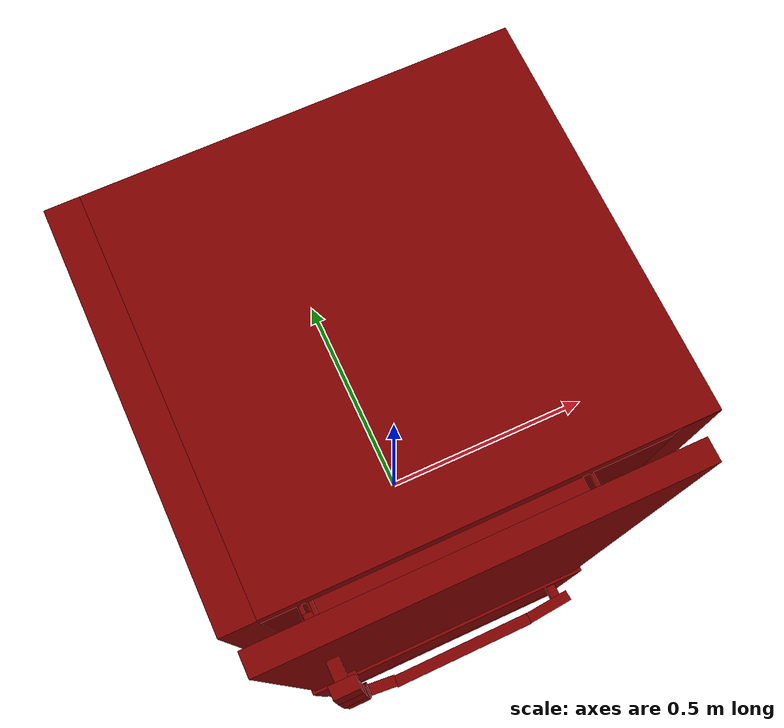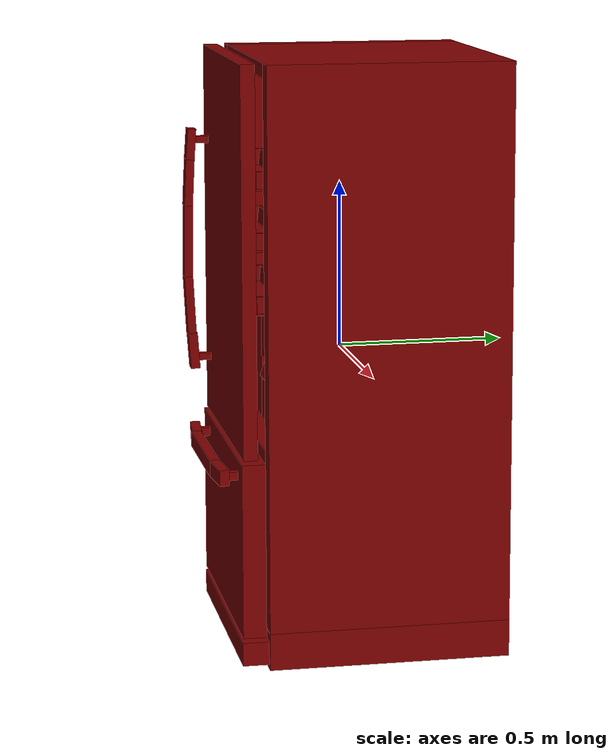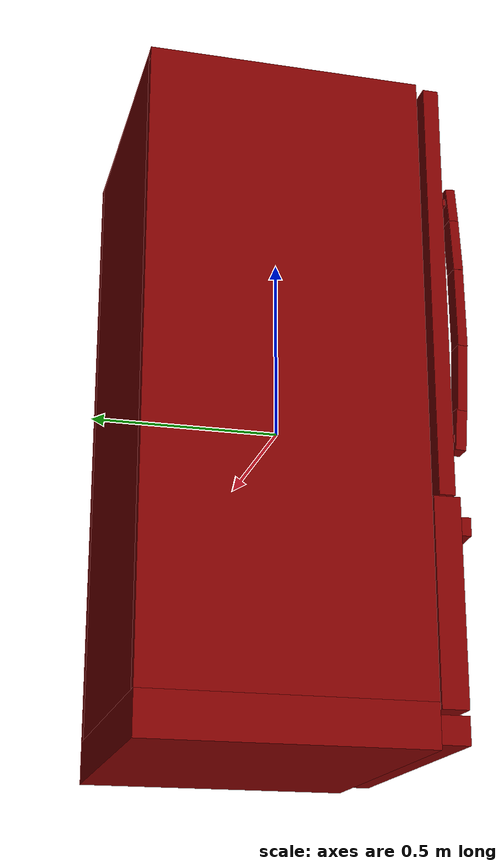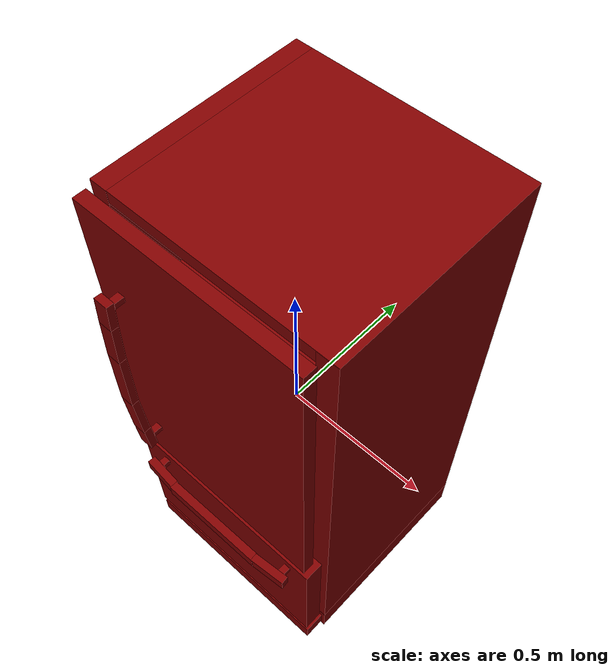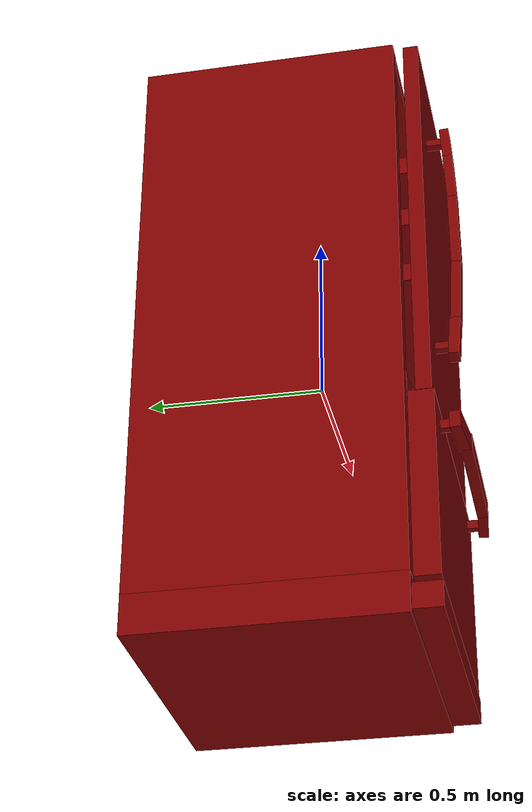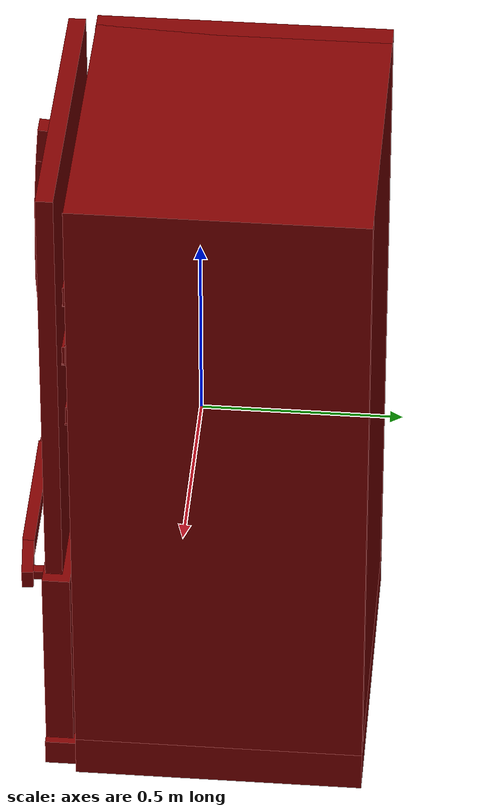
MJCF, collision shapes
<?xml version='1.0' encoding='UTF-8'?>
<mujoco model="model">
  <option timestep="0.002" gravity="0.0 0.0 -9.81"/>
  <compiler angle="radian"/>
  <asset>
    <mesh file="visuals/freezer0.obj" name="freezer0_vis"/>
    <mesh file="visuals/fridge_door.obj" name="fridge_door_vis"/>
    <mesh file="visuals/fridge_door_Clear.obj" name="fridge_door_Clear_vis"/>
    <mesh file="visuals/fridge_drawer0.obj" name="fridge_drawer0_vis"/>
    <mesh file="visuals/Body001.obj" name="Body001_vis"/>
    <mesh file="visuals/Body001_Clear.obj" name="Body001_Clear_vis"/>
    <texture file="visuals/T_BC001.png" name="Body001_material" type="2d"/>
    <material name="Body001_material" rgba="1 1 1 1.0" texture="Body001_material" shininess="0.4472135901451111" specular="2"/>
    <texture file="visuals/T_BC001.png" name="freezer0_material" type="2d"/>
    <material name="freezer0_material" rgba="1 1 1 1.0" texture="freezer0_material" shininess="0.4472135901451111" specular="2"/>
    <texture file="visuals/T_BC001.png" name="fridge_door_material" type="2d"/>
    <material name="fridge_door_material" rgba="1 1 1 1.0" texture="fridge_door_material" shininess="0.4472135901451111" specular="2"/>
    <texture file="visuals/T_BC001.png" name="fridge_door_Clear_material" type="2d"/>
    <material name="fridge_door_Clear_material" rgba="1 1 1 0.8030303120613098" texture="fridge_door_Clear_material" shininess="0.4472135901451111" specular="0.3103448502657381"/>
    <texture file="visuals/T_BC001.png" name="fridge_drawer0_material" type="2d"/>
    <material name="fridge_drawer0_material" rgba="1 1 1 1.0" texture="fridge_drawer0_material" shininess="0.4472135901451111" specular="0.3103448502657381"/>
    <texture file="visuals/T_BC001.png" name="Body001_Clear_material" type="2d"/>
    <material name="Body001_Clear_material" rgba="1 1 1 0.8030303120613098" texture="Body001_Clear_material" shininess="0.4472135901451111" specular="0.3103448502657381"/>
  </asset>
  <default>
    <default class="visual">
      <geom conaffinity="0" contype="0" group="1" type="mesh"/>
    </default>
    <default class="collision">
      <geom group="0" rgba="0.5 0 0 0.5"/>
    </default>
    <default class="spawn">
      <geom group="0" rgba="1 1 1 0.5" contype="0" conaffinity="0"/>
      <site group="0" rgba="1 1 1 0.5"/>
    </default>
    <default class="region">
      <geom group="1" conaffinity="0" contype="0" rgba="0 1 0 0"/>
    </default>
  </default>
  <worldbody>
    <body>
      <body name="object">
        <geom mesh="Body001_vis" type="mesh" solimp="0.998 0.998 0.001" solref="0.001 1" friction="0.95 0.3 0.1" class="visual" material="Body001_material"/>
        <geom class="collision" type="box" pos="0.00000000 0.07547752 -0.83180363" size="0.40092727541923523 0.3619028329849243 0.055972859263420105" quat="1.0 0.0 0.0 0.0"/>
        <geom class="collision" type="box" pos="0.00000000 -0.30439884 -0.83854110" size="0.38699397444725037 0.06026041880249977 0.035069309175014496" quat="1.0 0.0 0.0 0.0"/>
        <geom class="collision" type="box" pos="-0.37123820 0.07564552 0.05568552" size="0.029691064730286598 0.3617348074913025 0.8320721983909607" quat="1.0 0.0 0.0 0.0"/>
        <geom class="collision" type="box" pos="0.36703956 0.07564607 0.05568624" size="0.03388968110084534 0.3617343008518219 0.8320702314376831" quat="1.0 0.0 0.0 0.0"/>
        <geom class="collision" type="box" pos="-0.00254986 0.40858492 0.05571872" size="0.36844295263290405 0.028795447200536728 0.8320147395133972" quat="1.0 0.0 0.0 0.0"/>
        <geom class="collision" type="box" pos="0.00000000 0.07604709 0.86659413" size="0.40092727541923523 0.3613332509994507 0.02116292715072632" quat="1.0 0.0 0.0 0.0"/>
        <geom class="collision" type="box" pos="0.00000000 0.11664330 0.47583493" size="0.3439851403236389 0.28108713030815125 0.008938795886933804" quat="1.0 0.0 0.0 0.0"/>
        <geom class="collision" type="box" pos="0.00000000 0.11664330 0.12192452" size="0.3439885675907135 0.28109294176101685 0.009078171104192734" quat="1.0 0.0 0.0 0.0"/>
        <geom class="collision" type="box" pos="0.00000000 0.07604709 -0.26673893" size="0.40092727541923523 0.3613332509994507 0.026723390445113182" quat="1.0 0.0 0.0 0.0"/>
        <body name="freezer0">
          <geom class="region" name="reg_freezer0" type="box" pos="0.001201745000000004 0.024350254999999987 -0.56057527" size="0.27779890500000004 0.294136805 0.14698404000000004"/>
          <joint axis="0.0 -1.0 0.0" pos="0.00133324 -0.04749943 -0.53539724" limited="true" name="freezer0_door_joint" range="0.0 0.45" type="slide" damping="1" frictionloss="1" armature=".01" stiffness="0.05"/>
          <geom mesh="freezer0_vis" type="mesh" solimp="0.998 0.998 0.001" solref="0.001 1" friction="0.95 0.3 0.1" class="visual" material="freezer0_material"/>
          <geom class="collision" type="box" pos="-0.00660046 -0.32776091 -0.53012289" size="0.3870447278022766 0.03468473628163338 0.26123735308647156" quat="1.0 0.0 0.0 0.0" name="freezer0_door_main"/>
          <geom class="collision" type="box" pos="0.00130830 0.00852528 -0.73296125" size="0.2986600399017334 0.3277917504310608 0.020062031224370003" quat="1.0 0.0 0.0 0.0"/>
          <geom class="collision" type="box" pos="0.00032349 0.32951477 -0.56983007" size="0.29556772112846375 0.005847975146025419 0.1615792214870453" quat="1.0 0.0 0.0 0.0"/>
          <geom class="collision" type="box" pos="-0.28967586 0.00357531 -0.56983007" size="0.007958710193634033 0.331637442111969 0.1615738868713379" quat="1.0 0.0 0.0 0.0"/>
          <geom class="collision" type="box" pos="0.29242039 0.00357532 -0.56983007" size="0.007958710193634033 0.3316376209259033 0.16157416999340057" quat="1.0 0.0 0.0 0.0"/>
          <geom class="collision" type="box" pos="0.29373041 -0.38044200 -0.31778745" size="0.012112154625356197 0.022646723315119743 0.012438095174729824" quat="1.0 0.0 0.0 0.0" name="freezer0_door_handle_3"/>
          <geom class="collision" type="box" pos="-0.28232566 -0.38044202 -0.31870977" size="0.012112154625356197 0.022646652534604073 0.013016744516789913" quat="1.0 0.0 0.0 0.0" name="freezer0_door_handle_4"/>
          <geom class="collision" type="box" pos="0.25943783 -0.41085977 -0.31779824" size="0.06512778252363205 0.014262652024626732 0.02385825291275978" quat="0.9989623427391052 0.0 0.0 0.045544348657131195" name="freezer0_door_handle_2"/>
          <geom class="collision" type="box" pos="0.00715726 -0.41739950 -0.31779824" size="0.19426439702510834 0.015036577358841896 0.02385825291275978" quat="0.0029534813947975636 0.0 -0.0 -0.9999956488609314" name="freezer0_door_handle_main"/>
          <geom class="collision" type="box" pos="-0.24958523 -0.40984142 -0.31779824" size="0.06513524055480957 0.015036256983876228 0.02385825291275978" quat="0.04402461275458336 0.0 0.0 0.9990304708480835" name="freezer0_door_handle_1"/>
        </body>
        <body name="fridge_door">
          <joint axis="0.0 0.0 1.0" pos="0.36023828 -0.32431147 0.29066952" limited="true" name="fridge_door_joint" range="0.0 1.5707963267948966" type="hinge" damping="1" frictionloss="1" armature=".01" stiffness="0.05"/>
          <geom mesh="fridge_door_vis" type="mesh" solimp="0.998 0.998 0.001" solref="0.001 1" friction="0.95 0.3 0.1" class="visual" material="fridge_door_material"/>
          <geom class="collision" type="box" pos="-0.01024919 -0.33389804 0.31349509" size="0.37174180150032043 0.021175889298319817 0.5742824077606201" quat="1.0 0.0 0.0 0.0" name="fridge_door_main"/>
          <geom class="collision" type="box" pos="-0.27752504 -0.41319987 0.59146213" size="0.024293996393680573 0.01296269427984953 0.0471712201833725" quat="0.9993683695793152 -0.03553691506385803 7.924251301915096e-18 2.594040985905709e-20" name="fridge_door_handle_2"/>
          <geom class="collision" type="box" pos="-0.27771530 -0.38044202 0.60462432" size="0.012112154625356197 0.022646870464086533 0.010416803881525993" quat="1.0 0.0 0.0 0.0" name="fridge_door_handle_3"/>
          <geom class="collision" type="box" pos="0.00346241 -0.25207624 0.15458160" size="0.27945879101753235 0.0548904687166214 0.0027549949008971453" quat="1.0 0.0 0.0 0.0"/>
          <geom class="collision" type="box" pos="0.00346241 -0.19717951 0.17905681" size="0.27945879101753235 0.028109341859817505 0.0033651823177933693" quat="0.7436845898628235 0.6685306429862976 -1.3533055986193797e-16 2.0975043785633737e-17"/>
          <geom class="collision" type="box" pos="0.00346241 -0.30198240 0.17992203" size="0.27945879101753235 0.0033709299750626087 0.027542633935809135" quat="1.0 0.0 0.0 0.0"/>
          <geom class="collision" type="box" pos="-0.27352199 -0.24647658 0.17992203" size="0.003525273408740759 0.05767184868454933 0.0275416262447834" quat="1.0 0.0 0.0 0.0"/>
          <geom class="collision" type="box" pos="0.27700293 -0.24647658 0.17992203" size="0.003525279927998781 0.05767184868454933 0.027541669085621834" quat="1.0 0.0 0.0 0.0"/>
          <geom class="collision" type="box" pos="0.00220755 -0.25207624 0.51956891" size="0.27945879101753235 0.054890796542167664 0.0027550114318728447" quat="1.0 0.0 0.0 0.0"/>
          <geom class="collision" type="box" pos="0.00220755 -0.19717951 0.54404413" size="0.27945879101753235 0.028109341859817505 0.0033651823177933693" quat="0.7436845898628235 0.6685306429862976 -1.3533055986193797e-16 2.0975043785633737e-17"/>
          <geom class="collision" type="box" pos="0.00220755 -0.30198240 0.54490941" size="0.27945879101753235 0.003370890161022544 0.027542633935809135" quat="1.0 0.0 0.0 0.0"/>
          <geom class="collision" type="box" pos="-0.27477685 -0.24647658 0.54490941" size="0.0035252992529422045 0.05767184868454933 0.027541793882846832" quat="1.0 0.0 0.0 0.0"/>
          <geom class="collision" type="box" pos="0.27574807 -0.24647658 0.54490941" size="0.003525305539369583 0.05767184868454933 0.027541836723685265" quat="1.0 0.0 0.0 0.0"/>
          <geom class="collision" type="box" pos="0.00465445 -0.25673115 0.34140803" size="0.27945879101753235 0.05489112436771393 0.0027550277300179005" quat="1.0 0.0 0.0 0.0"/>
          <geom class="collision" type="box" pos="0.00465445 -0.20183444 0.36588319" size="0.27945879101753235 0.028109341859817505 0.0033651823177933693" quat="0.7436845898628235 0.6685306429862976 -1.3533055986193797e-16 2.0975043785633737e-17"/>
          <geom class="collision" type="box" pos="0.00465445 -0.30663732 0.36674847" size="0.27945879101753235 0.0033708501141518354 0.027542633935809135" quat="1.0 0.0 0.0 0.0"/>
          <geom class="collision" type="box" pos="-0.27232996 -0.25113151 0.36674847" size="0.0035253248643130064 0.05767184868454933 0.027541963383555412" quat="1.0 0.0 0.0 0.0"/>
          <geom class="collision" type="box" pos="0.27819496 -0.25113151 0.36674847" size="0.003525331150740385 0.05767184868454933 0.027542004361748695" quat="1.0 0.0 0.0 0.0"/>
          <geom class="collision" type="box" pos="-0.27752504 -0.41993857 0.47333463" size="0.024293996393680573 0.012967360205948353 0.07193995267152786" quat="0.9997038245201111 -0.02433730475604534 5.4343905088355674e-18 1.9865420957057195e-20" name="fridge_door_handle_1"/>
          <geom class="collision" type="box" pos="-0.27752504 -0.42446613 0.29047601" size="0.024293996393680573 0.012979773804545403 0.11050014942884445" quat="0.9999790191650391 -0.0064763533882796764 1.451698045922654e-18 3.1794554866099182e-21" name="fridge_door_handle_main"/>
          <geom class="collision" type="box" pos="-0.27752504 -0.42104054 0.08976315" size="0.024293996393680573 0.012981601059436798 0.09150311350822449" quat="0.9996955990791321 0.02467193827033043 -5.471789412280621e-18 8.734325497898688e-22" name="fridge_door_handle_4"/>
          <geom class="collision" type="box" pos="-0.27752504 -0.41108924 -0.05404255" size="0.024294327944517136 0.014170503243803978 0.05627668648958206" quat="0.9993956685066223 0.034759774804115295 -7.718220463662838e-18 -1.3989206684245053e-24" name="fridge_door_handle_5"/>
          <geom class="collision" type="box" pos="-0.27771530 -0.38044202 -0.07634867" size="0.012112154625356197 0.02264673449099064 0.010415987111628056" quat="1.0 0.0 0.0 0.0" name="fridge_door_handle_6"/>
          <body name="fridge_door_Clear">
            <geom mesh="fridge_door_Clear_vis" type="mesh" solimp="0.998 0.998 0.001" solref="0.001 1" friction="0.95 0.3 0.1" class="visual" material="fridge_door_Clear_material"/>
            <geom class="collision" type="box" pos="0.00346241 -0.25207624 0.15458160" size="0.27945879101753235 0.0548904687166214 0.0027549949008971453" quat="1.0 0.0 0.0 0.0"/>
            <geom class="collision" type="box" pos="0.00346241 -0.19717951 0.17905681" size="0.27945879101753235 0.028109341859817505 0.0033651823177933693" quat="0.7436845898628235 0.6685306429862976 -1.3533055986193797e-16 2.0975043785633737e-17"/>
            <geom class="collision" type="box" pos="0.00346241 -0.30198240 0.17992203" size="0.27945879101753235 0.0033709299750626087 0.027542633935809135" quat="1.0 0.0 0.0 0.0"/>
            <geom class="collision" type="box" pos="-0.27352199 -0.24647658 0.17992203" size="0.003525273408740759 0.05767184868454933 0.0275416262447834" quat="1.0 0.0 0.0 0.0"/>
            <geom class="collision" type="box" pos="0.27700293 -0.24647658 0.17992203" size="0.003525279927998781 0.05767184868454933 0.027541669085621834" quat="1.0 0.0 0.0 0.0"/>
            <geom class="collision" type="box" pos="0.00220755 -0.25207624 0.51956891" size="0.27945879101753235 0.054890796542167664 0.0027550114318728447" quat="1.0 0.0 0.0 0.0"/>
            <geom class="collision" type="box" pos="0.00220755 -0.19717951 0.54404413" size="0.27945879101753235 0.028109341859817505 0.0033651823177933693" quat="0.7436845898628235 0.6685306429862976 -1.3533055986193797e-16 2.0975043785633737e-17"/>
            <geom class="collision" type="box" pos="0.00220755 -0.30198240 0.54490941" size="0.27945879101753235 0.003370890161022544 0.027542633935809135" quat="1.0 0.0 0.0 0.0"/>
            <geom class="collision" type="box" pos="-0.27477685 -0.24647658 0.54490941" size="0.0035252992529422045 0.05767184868454933 0.027541793882846832" quat="1.0 0.0 0.0 0.0"/>
            <geom class="collision" type="box" pos="0.27574807 -0.24647658 0.54490941" size="0.003525305539369583 0.05767184868454933 0.027541836723685265" quat="1.0 0.0 0.0 0.0"/>
            <geom class="collision" type="box" pos="0.00465445 -0.25673115 0.34140803" size="0.27945879101753235 0.05489112436771393 0.0027550277300179005" quat="1.0 0.0 0.0 0.0"/>
            <geom class="collision" type="box" pos="0.00465445 -0.20183444 0.36588319" size="0.27945879101753235 0.028109341859817505 0.0033651823177933693" quat="0.7436845898628235 0.6685306429862976 -1.3533055986193797e-16 2.0975043785633737e-17"/>
            <geom class="collision" type="box" pos="0.00465445 -0.30663732 0.36674847" size="0.27945879101753235 0.0033708501141518354 0.027542633935809135" quat="1.0 0.0 0.0 0.0"/>
            <geom class="collision" type="box" pos="-0.27232996 -0.25113151 0.36674847" size="0.0035253248643130064 0.05767184868454933 0.027541963383555412" quat="1.0 0.0 0.0 0.0"/>
            <geom class="collision" type="box" pos="0.27819496 -0.25113151 0.36674847" size="0.003525331150740385 0.05767184868454933 0.027542004361748695" quat="1.0 0.0 0.0 0.0"/>
          </body>
        </body>
        <body name="fridge_drawer0">
          <geom class="region" name="reg_fridge_drawer0" type="box" pos="-0.008650154999999993 0.061961689999999986 -0.069689235" size="0.298932625 0.26352719 0.143105255"/>
          <joint axis="0.0 -1.0 0.0" pos="-0.00988720 0.05914264 -0.06819769" limited="true" name="fridge_drawer0_joint" range="0.0 0.4" type="slide" damping="1" frictionloss="1" armature=".01" stiffness="0.05"/>
          <geom mesh="fridge_drawer0_vis" type="mesh" solimp="0.998 0.998 0.001" solref="0.001 1" friction="0.95 0.3 0.1" class="visual" material="fridge_drawer0_material"/>
          <geom class="collision" type="box" pos="-0.00628336 0.34237566 -0.07300114" size="0.30941927433013916 0.0033920039422810078 0.15184463560581207" quat="1.0 -8.146033536604591e-08 0.0 0.0"/>
          <geom class="collision" type="box" pos="-0.31843701 0.06139618 -0.07300113" size="0.004088165238499641 0.27722516655921936 0.15184436738491058" quat="1.0 -8.146033536604591e-08 0.0 0.0"/>
          <geom class="collision" type="box" pos="0.29954413 0.06139618 -0.07300113" size="0.0037448115181177855 0.2772248387336731 0.1518440693616867" quat="1.0 -8.146033536604591e-08 0.0 0.0"/>
          <geom class="collision" type="box" pos="-0.00971963 0.06139618 -0.22139106" size="0.3094182312488556 0.27722448110580444 0.003200273960828781" quat="1.0 -8.146033536604591e-08 0.0 0.0"/>
          <geom class="collision" type="box" pos="-0.00441690 -0.21803558 -0.07086989" size="0.07190626859664917 0.005427331663668156 0.033017951995134354" quat="0.9871617555618286 -0.15972371399402618 0.0 0.0"/>
          <geom class="collision" type="box" pos="-0.19834073 -0.21817491 -0.06607416" size="0.12201779335737228 0.010428208857774734 0.16618968546390533" quat="1.0 -8.146033536604591e-08 0.0 0.0"/>
          <geom class="collision" type="box" pos="-0.00441688 -0.21817491 -0.16972964" size="0.07190637290477753 0.010428193025290966 0.06232113018631935" quat="1.0 -8.146033536604591e-08 0.0 0.0"/>
          <geom class="collision" type="box" pos="-0.00441688 -0.21817491 0.03072530" size="0.07190635800361633 0.010428196750581264 0.06939006596803665" quat="1.0 -8.146033536604591e-08 0.0 0.0"/>
          <geom class="collision" type="box" pos="0.18582636 -0.21817491 -0.06607416" size="0.1183369979262352 0.010428196750581264 0.16618958115577698" quat="1.0 -8.146033536604591e-08 0.0 0.0"/>
          <geom class="collision" type="box" pos="-0.00441690 -0.20953764 -0.07218441" size="0.07190626859664917 0.0022927906829863787 0.033525124192237854" quat="1.0 -8.146034247147327e-08 0.0 0.0"/>
        </body>
        <body name="Body001_Clear">
          <geom mesh="Body001_Clear_vis" type="mesh" solimp="0.998 0.998 0.001" solref="0.001 1" friction="0.95 0.3 0.1" class="visual" material="Body001_Clear_material"/>
          <geom class="collision" type="box" pos="0.00000000 0.11664330 0.47583493" size="0.3439851403236389 0.28108713030815125 0.008938795886933804" quat="1.0 0.0 0.0 0.0"/>
          <geom class="collision" type="box" pos="0.00000000 0.11664330 0.12192452" size="0.3439885675907135 0.28109294176101685 0.009078171104192734" quat="1.0 0.0 0.0 0.0"/>
        </body>
        <geom class="region" name="reg_fridge_shelf0" type="box" pos="0.0013393600000000117 0.10273257499999999 0.29927334" size="0.32397881 0.271058535 0.16249031000000003"/>
        <geom class="region" name="reg_fridge_shelf1" type="box" pos="0.001307845000000002 0.10273257499999999 0.6573703200000001" size="0.323928105 0.271058535 0.16760857"/>
        <geom class="region" name="reg_main" type="box" pos="4.999999997368221e-09 0.03635967000000001 -1.0500000000024379e-05" size="0.40192727500000003 0.40202059 0.88876749"/>
      </body>
    </body>
  </worldbody>
  <actuator>
    <motor name="freezer0_door_joint_actuator" joint="freezer0_door_joint" gear="50"/>
    <motor name="fridge_door_joint_actuator" joint="fridge_door_joint" gear="50"/>
    <motor name="fridge_drawer0_joint_actuator" joint="fridge_drawer0_joint" gear="50"/>
  </actuator>
</mujoco>
